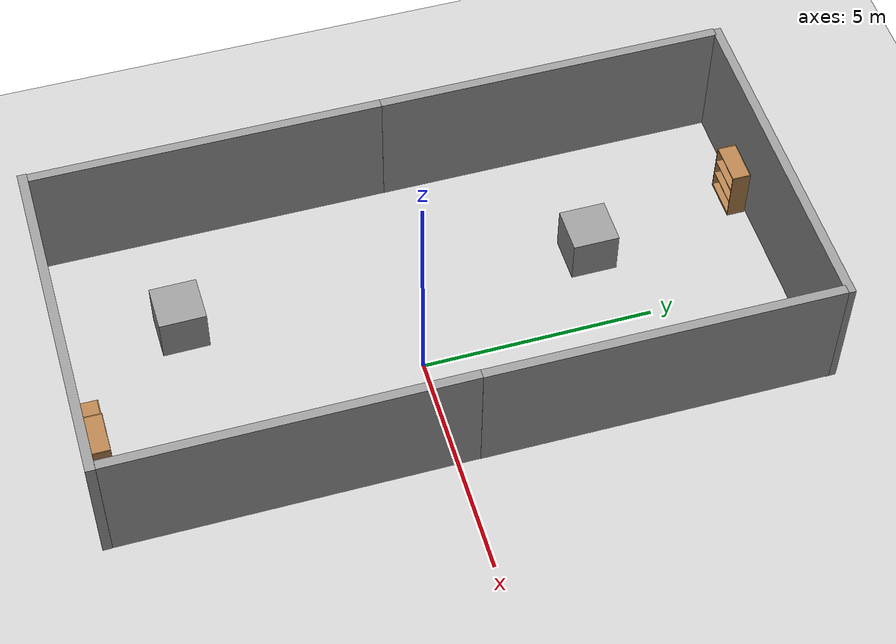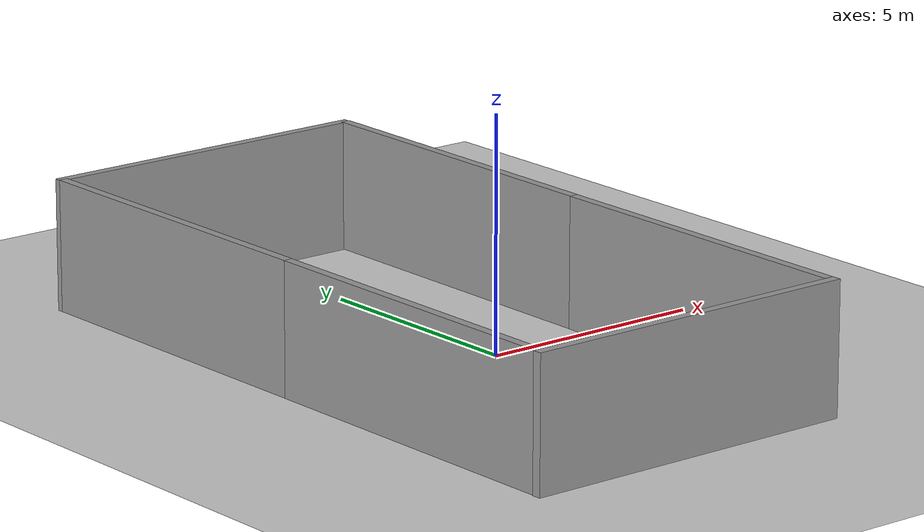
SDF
<sdf version="1.5">
 <world name="example">
  <physics type="ode">
   <real_time_factor>1</real_time_factor>
   <real_time_update_rate>0.0</real_time_update_rate>
   <max_step_size>0.002</max_step_size>
  </physics>
  <scene><ambient>0.4 0.4 0.4 1</ambient><background>0.7 0.7 0.7 1</background><shadows>1</shadows></scene>
  <include><uri>model://sun</uri></include>
  <include><uri>model://ground_plane</uri></include>
  <model name="ground_plane">
   <static>1</static>
   <link name="link">
    <collision name="collision">
     <geometry><plane><normal>0 0 1</normal><size>100 100</size></plane></geometry>
     <surface>
      <contact><collide_bitmask>65535</collide_bitmask></contact>
      <friction><ode><mu>100</mu><mu2>50</mu2></ode></friction>
     </surface>
    </collision>
    <visual name="visual">
     <cast_shadows>0</cast_shadows>
     <geometry><plane><normal>0 0 1</normal><size>100 100</size></plane></geometry>
     <material>
      <script><uri>file://media/materials/scripts/gazebo.material</uri><name>Gazebo/Grey</name></script>
     </material>
    </visual>
   </link>
  </model>
  <model name="grey_wall">
   <static>1</static>
   <link name="link">
    <pose>0 0 1.4 0 -0 0</pose>
    <collision name="collision"><geometry><box><size>7.5 0.2 2.8</size></box></geometry></collision>
    <visual name="visual">
     <cast_shadows>0</cast_shadows>
     <geometry><box><size>7.5 0.2 2.8</size></box></geometry>
     <material>
      <script>
       <uri>model://grey_wall/materials/scripts</uri>
       <uri>model://grey_wall/materials/textures</uri>
       <name>vrc/grey_wall</name>
      </script>
     </material>
    </visual>
   </link>
   <pose>-1.22647 -7.12592 0 0 -0 0</pose>
  </model>
  <model name="grey_wall_clone">
   <static>1</static>
   <link name="link">
    <pose>0 0 1.4 0 -0 0</pose>
    <collision name="collision"><geometry><box><size>7.5 0.2 2.8</size></box></geometry></collision>
    <visual name="visual">
     <cast_shadows>0</cast_shadows>
     <geometry><box><size>7.5 0.2 2.8</size></box></geometry>
     <material>
      <script>
       <uri>model://grey_wall/materials/scripts</uri>
       <uri>model://grey_wall/materials/textures</uri>
       <name>vrc/grey_wall</name>
      </script>
     </material>
    </visual>
   </link>
   <pose>-4.85684 -3.28192 0 0 -0 1.57</pose>
  </model>
  <model name="grey_wall_clone_clone">
   <static>1</static>
   <link name="link">
    <pose>0 0 1.4 0 -0 0</pose>
    <collision name="collision"><geometry><box><size>7.5 0.2 2.8</size></box></geometry></collision>
    <visual name="visual">
     <cast_shadows>0</cast_shadows>
     <geometry><box><size>7.5 0.2 2.8</size></box></geometry>
     <material>
      <script>
       <uri>model://grey_wall/materials/scripts</uri>
       <uri>model://grey_wall/materials/textures</uri>
       <name>vrc/grey_wall</name>
      </script>
     </material>
    </visual>
   </link>
   <pose>-4.85377 4.21537 0 0 0 -1.57</pose>
  </model>
  <model name="grey_wall_clone_clone_0">
   <static>1</static>
   <link name="link">
    <pose>0 0 1.4 0 -0 0</pose>
    <collision name="collision"><geometry><box><size>7.5 0.2 2.8</size></box></geometry></collision>
    <visual name="visual">
     <cast_shadows>0</cast_shadows>
     <geometry><box><size>7.5 0.2 2.8</size></box></geometry>
     <material>
      <script>
       <uri>model://grey_wall/materials/scripts</uri>
       <uri>model://grey_wall/materials/textures</uri>
       <name>vrc/grey_wall</name>
      </script>
     </material>
    </visual>
   </link>
   <pose>2.42137 -3.27489 0 0 -0 1.57</pose>
  </model>
  <model name="grey_wall_clone_clone_1">
   <static>1</static>
   <link name="link">
    <pose>0 0 1.4 0 -0 0</pose>
    <collision name="collision"><geometry><box><size>7.5 0.2 2.8</size></box></geometry></collision>
    <visual name="visual">
     <cast_shadows>0</cast_shadows>
     <geometry><box><size>7.5 0.2 2.8</size></box></geometry>
     <material>
      <script>
       <uri>model://grey_wall/materials/scripts</uri>
       <uri>model://grey_wall/materials/textures</uri>
       <name>vrc/grey_wall</name>
      </script>
     </material>
    </visual>
   </link>
   <pose>2.44823 4.22336 0 0 0 -1.57566</pose>
  </model>
  <model name="grey_wall_clone_0">
   <static>1</static>
   <link name="link">
    <pose>0 0 1.4 0 -0 0</pose>
    <collision name="collision"><geometry><box><size>7.5 0.2 2.8</size></box></geometry></collision>
    <visual name="visual">
     <cast_shadows>0</cast_shadows>
     <geometry><box><size>7.5 0.2 2.8</size></box></geometry>
     <material>
      <script>
       <uri>model://grey_wall/materials/scripts</uri>
       <uri>model://grey_wall/materials/textures</uri>
       <name>vrc/grey_wall</name>
      </script>
     </material>
    </visual>
   </link>
   <pose>-1.18649 8.02478 -0.01195 0 -0 0</pose>
  </model>
  <model name="bookshelf">
   <static>1</static>
   <link name="link">
    <inertial><mass>1</mass></inertial>
    <collision name="back">
     <pose>0 0.005 0.6 0 -0 0</pose>
     <geometry><box><size>0.9 0.01 1.2</size></box></geometry>
    </collision>
    <visual name="visual1">
     <pose>0 0.005 0.6 0 -0 0</pose>
     <geometry><box><size>0.9 0.01 1.2</size></box></geometry>
     <material>
      <script><uri>file://media/materials/scripts/gazebo.material</uri><name>Gazebo/Wood</name></script>
     </material>
    </visual>
    <collision name="left_side">
     <pose>0.45 -0.195 0.6 0 -0 0</pose>
     <geometry><box><size>0.02 0.4 1.2</size></box></geometry>
    </collision>
    <visual name="visual2">
     <pose>0.45 -0.195 0.6 0 -0 0</pose>
     <geometry><box><size>0.02 0.4 1.2</size></box></geometry>
     <material>
      <script><uri>file://media/materials/scripts/gazebo.material</uri><name>Gazebo/Wood</name></script>
     </material>
    </visual>
    <collision name="right_side">
     <pose>-0.45 -0.195 0.6 0 -0 0</pose>
     <geometry><box><size>0.02 0.4 1.2</size></box></geometry>
    </collision>
    <visual name="visual3">
     <pose>-0.45 -0.195 0.6 0 -0 0</pose>
     <geometry><box><size>0.02 0.4 1.2</size></box></geometry>
     <material>
      <script><uri>file://media/materials/scripts/gazebo.material</uri><name>Gazebo/Wood</name></script>
     </material>
    </visual>
    <collision name="bottom">
     <pose>0 -0.195 0.03 0 -0 0</pose>
     <geometry><box><size>0.88 0.4 0.06</size></box></geometry>
    </collision>
    <visual name="visual4">
     <pose>0 -0.195 0.03 0 -0 0</pose>
     <geometry><box><size>0.88 0.4 0.06</size></box></geometry>
     <material>
      <script><uri>file://media/materials/scripts/gazebo.material</uri><name>Gazebo/Wood</name></script>
     </material>
    </visual>
    <collision name="top">
     <pose>0 -0.195 1.19 0 -0 0</pose>
     <geometry><box><size>0.88 0.4 0.02</size></box></geometry>
    </collision>
    <visual name="visual5">
     <pose>0 -0.195 1.19 0 -0 0</pose>
     <geometry><box><size>0.88 0.4 0.02</size></box></geometry>
     <material>
      <script><uri>file://media/materials/scripts/gazebo.material</uri><name>Gazebo/Wood</name></script>
     </material>
    </visual>
    <collision name="low_shelf">
     <pose>0 -0.195 0.43 0 -0 0</pose>
     <geometry><box><size>0.88 0.4 0.02</size></box></geometry>
    </collision>
    <visual name="visual6">
     <pose>0 -0.195 0.43 0 -0 0</pose>
     <geometry><box><size>0.88 0.4 0.02</size></box></geometry>
     <material>
      <script><uri>file://media/materials/scripts/gazebo.material</uri><name>Gazebo/Wood</name></script>
     </material>
    </visual>
    <collision name="high_shelf">
     <pose>0 -0.195 0.8 0 -0 0</pose>
     <geometry><box><size>0.88 0.4 0.02</size></box></geometry>
    </collision>
    <visual name="visual7">
     <pose>0 -0.195 0.8 0 -0 0</pose>
     <geometry><box><size>0.88 0.4 0.02</size></box></geometry>
     <material>
      <script><uri>file://media/materials/scripts/gazebo.material</uri><name>Gazebo/Wood</name></script>
     </material>
    </visual>
   </link>
   <pose>-2.50109 7.89063 0 0 -0 0</pose>
  </model>
  <model name="bookshelf_0">
   <static>1</static>
   <link name="link">
    <inertial><mass>1</mass></inertial>
    <collision name="back">
     <pose>0 0.005 0.6 0 -0 0</pose>
     <geometry><box><size>0.9 0.01 1.2</size></box></geometry>
    </collision>
    <visual name="visual1">
     <pose>0 0.005 0.6 0 -0 0</pose>
     <geometry><box><size>0.9 0.01 1.2</size></box></geometry>
     <material>
      <script><uri>file://media/materials/scripts/gazebo.material</uri><name>Gazebo/Wood</name></script>
     </material>
    </visual>
    <collision name="left_side">
     <pose>0.45 -0.195 0.6 0 -0 0</pose>
     <geometry><box><size>0.02 0.4 1.2</size></box></geometry>
    </collision>
    <visual name="visual2">
     <pose>0.45 -0.195 0.6 0 -0 0</pose>
     <geometry><box><size>0.02 0.4 1.2</size></box></geometry>
     <material>
      <script><uri>file://media/materials/scripts/gazebo.material</uri><name>Gazebo/Wood</name></script>
     </material>
    </visual>
    <collision name="right_side">
     <pose>-0.45 -0.195 0.6 0 -0 0</pose>
     <geometry><box><size>0.02 0.4 1.2</size></box></geometry>
    </collision>
    <visual name="visual3">
     <pose>-0.45 -0.195 0.6 0 -0 0</pose>
     <geometry><box><size>0.02 0.4 1.2</size></box></geometry>
     <material>
      <script><uri>file://media/materials/scripts/gazebo.material</uri><name>Gazebo/Wood</name></script>
     </material>
    </visual>
    <collision name="bottom">
     <pose>0 -0.195 0.03 0 -0 0</pose>
     <geometry><box><size>0.88 0.4 0.06</size></box></geometry>
    </collision>
    <visual name="visual4">
     <pose>0 -0.195 0.03 0 -0 0</pose>
     <geometry><box><size>0.88 0.4 0.06</size></box></geometry>
     <material>
      <script><uri>file://media/materials/scripts/gazebo.material</uri><name>Gazebo/Wood</name></script>
     </material>
    </visual>
    <collision name="top">
     <pose>0 -0.195 1.19 0 -0 0</pose>
     <geometry><box><size>0.88 0.4 0.02</size></box></geometry>
    </collision>
    <visual name="visual5">
     <pose>0 -0.195 1.19 0 -0 0</pose>
     <geometry><box><size>0.88 0.4 0.02</size></box></geometry>
     <material>
      <script><uri>file://media/materials/scripts/gazebo.material</uri><name>Gazebo/Wood</name></script>
     </material>
    </visual>
    <collision name="low_shelf">
     <pose>0 -0.195 0.43 0 -0 0</pose>
     <geometry><box><size>0.88 0.4 0.02</size></box></geometry>
    </collision>
    <visual name="visual6">
     <pose>0 -0.195 0.43 0 -0 0</pose>
     <geometry><box><size>0.88 0.4 0.02</size></box></geometry>
     <material>
      <script><uri>file://media/materials/scripts/gazebo.material</uri><name>Gazebo/Wood</name></script>
     </material>
    </visual>
    <collision name="high_shelf">
     <pose>0 -0.195 0.8 0 -0 0</pose>
     <geometry><box><size>0.88 0.4 0.02</size></box></geometry>
    </collision>
    <visual name="visual7">
     <pose>0 -0.195 0.8 0 -0 0</pose>
     <geometry><box><size>0.88 0.4 0.02</size></box></geometry>
     <material>
      <script><uri>file://media/materials/scripts/gazebo.material</uri><name>Gazebo/Wood</name></script>
     </material>
    </visual>
   </link>
   <pose>0.627916 -6.652 0 0 -0 0</pose>
  </model>
  <model name="cabinet">
   <static>1</static>
   <link name="cabinet_bottom_plate">
    <inertial>
     <pose>0 0 -1 0 -0 0</pose>
     <inertia><ixx>2.05</ixx><ixy>0</ixy><ixz>0</ixz><iyy>2.05</iyy><iyz>0</iyz><izz>2.05</izz></inertia>
     <mass>25</mass>
    </inertial>
    <collision name="cabinet_bottom_plate_geom">
     <pose>0 0 0.01 0 -0 0</pose>
     <geometry><box><size>0.45 0.45 0.02</size></box></geometry>
    </collision>
    <visual name="cabinet_bottom_plate_geom_visual">
     <pose>0 0 0.01 0 -0 0</pose>
     <geometry><box><size>0.45 0.45 0.02</size></box></geometry>
     <material>
      <script><uri>file://media/materials/scripts/gazebo.material</uri><name>Gazebo/Wood</name></script>
     </material>
    </visual>
    <collision name="cabinet_bottom_plate_geom_cabinet_back_plate">
     <pose>0.235 0 0.51 0 -0 0</pose>
     <geometry><box><size>0.02 0.45 1.02</size></box></geometry>
    </collision>
    <visual name="cabinet_bottom_plate_geom_cabinet_back_plate_visual">
     <pose>0.235 0 0.51 0 -0 0</pose>
     <geometry><box><size>0.02 0.45 1.02</size></box></geometry>
     <material>
      <script><uri>file://media/materials/scripts/gazebo.material</uri><name>Gazebo/Wood</name></script>
     </material>
    </visual>
    <collision name="cabinet_bottom_plate_geom_cabinet_left_plate">
     <pose>0 0.235 0.51 0 -0 0</pose>
     <geometry><box><size>0.45 0.02 1.02</size></box></geometry>
    </collision>
    <visual name="cabinet_bottom_plate_geom_cabinet_left_plate_visual">
     <pose>0 0.235 0.51 0 -0 0</pose>
     <geometry><box><size>0.45 0.02 1.02</size></box></geometry>
     <material>
      <script><uri>file://media/materials/scripts/gazebo.material</uri><name>Gazebo/Wood</name></script>
     </material>
    </visual>
    <collision name="cabinet_bottom_plate_geom_cabinet_middle_plate">
     <pose>0 0 0.51 0 -0 0</pose>
     <geometry><box><size>0.45 0.45 0.02</size></box></geometry>
    </collision>
    <visual name="cabinet_bottom_plate_geom_cabinet_middle_plate_visual">
     <pose>0 0 0.51 0 -0 0</pose>
     <geometry><box><size>0.45 0.45 0.02</size></box></geometry>
     <material>
      <script><uri>file://media/materials/scripts/gazebo.material</uri><name>Gazebo/Wood</name></script>
     </material>
    </visual>
    <collision name="cabinet_bottom_plate_geom_cabinet_right_plate">
     <pose>0 -0.235 0.51 0 -0 0</pose>
     <geometry><box><size>0.45 0.02 1.02</size></box></geometry>
    </collision>
    <visual name="cabinet_bottom_plate_geom_cabinet_right_plate_visual">
     <pose>0 -0.235 0.51 0 -0 0</pose>
     <geometry><box><size>0.45 0.02 1.02</size></box></geometry>
     <material>
      <script><uri>file://media/materials/scripts/gazebo.material</uri><name>Gazebo/Wood</name></script>
     </material>
    </visual>
    <collision name="cabinet_bottom_plate_geom_cabinet_top_plate">
     <pose>0 0 1.01 0 -0 0</pose>
     <geometry><box><size>0.45 0.45 0.02</size></box></geometry>
    </collision>
    <visual name="cabinet_bottom_plate_geom_cabinet_top_plate_visual">
     <pose>0 0 1.01 0 -0 0</pose>
     <geometry><box><size>0.45 0.45 0.02</size></box></geometry>
     <material>
      <script><uri>file://media/materials/scripts/gazebo.material</uri><name>Gazebo/Wood</name></script>
     </material>
    </visual>
   </link>
   <pose>-0.070744 -6.90193 0 0 -0 0</pose>
  </model>
  <model name="unit_box">
   <pose>-1.84787 4.19254 0.499995 1e-05 0 -0.00016</pose>
   <link name="link">
    <inertial>
     <mass>1</mass>
     <inertia>
      <ixx>0.166667</ixx>
      <ixy>0</ixy>
      <ixz>0</ixz>
      <iyy>0.166667</iyy>
      <iyz>0</iyz>
      <izz>0.166667</izz>
     </inertia>
    </inertial>
    <collision name="collision"><geometry><box><size>1 1 1</size></box></geometry></collision>
    <visual name="visual">
     <geometry><box><size>1 1 1</size></box></geometry>
     <material>
      <script><name>Gazebo/Grey</name><uri>file://media/materials/scripts/gazebo.material</uri></script>
     </material>
    </visual>
   </link>
  </model>
  <model name="unit_box_0">
   <pose>-2.24198 -4.62197 0.499995 -0 1e-05 0.008194</pose>
   <link name="link">
    <inertial>
     <mass>1</mass>
     <inertia>
      <ixx>0.166667</ixx>
      <ixy>0</ixy>
      <ixz>0</ixz>
      <iyy>0.166667</iyy>
      <iyz>0</iyz>
      <izz>0.166667</izz>
     </inertia>
    </inertial>
    <collision name="collision"><geometry><box><size>1 1 1</size></box></geometry></collision>
    <visual name="visual">
     <geometry><box><size>1 1 1</size></box></geometry>
     <material>
      <script><name>Gazebo/Grey</name><uri>file://media/materials/scripts/gazebo.material</uri></script>
     </material>
    </visual>
   </link>
  </model>
 </world>
</sdf>
